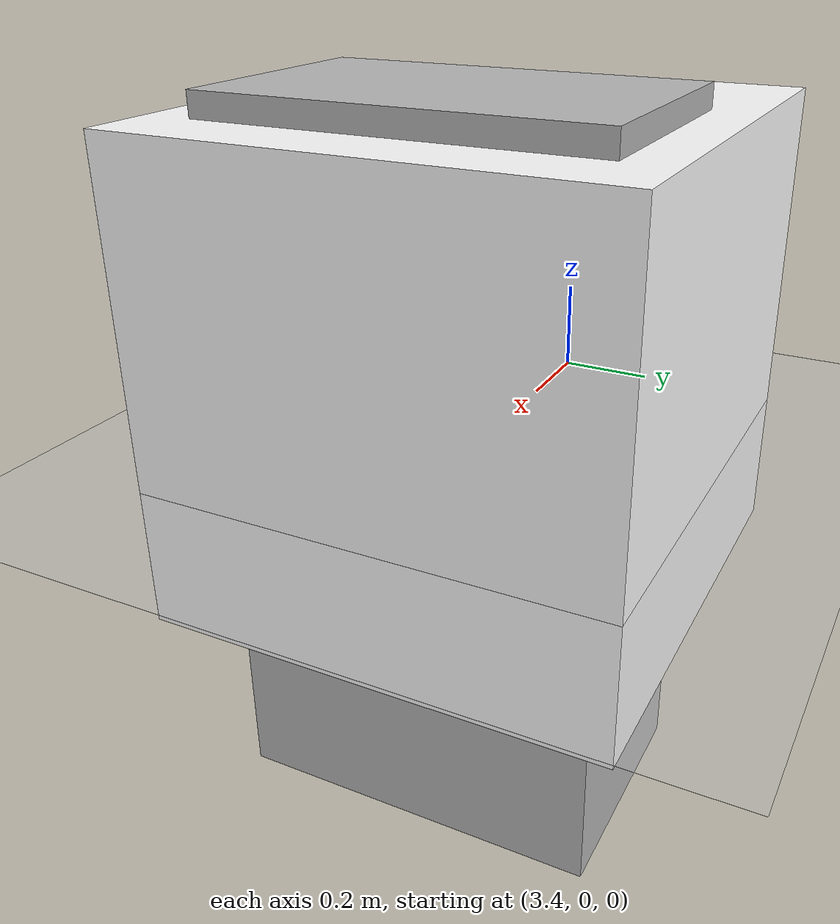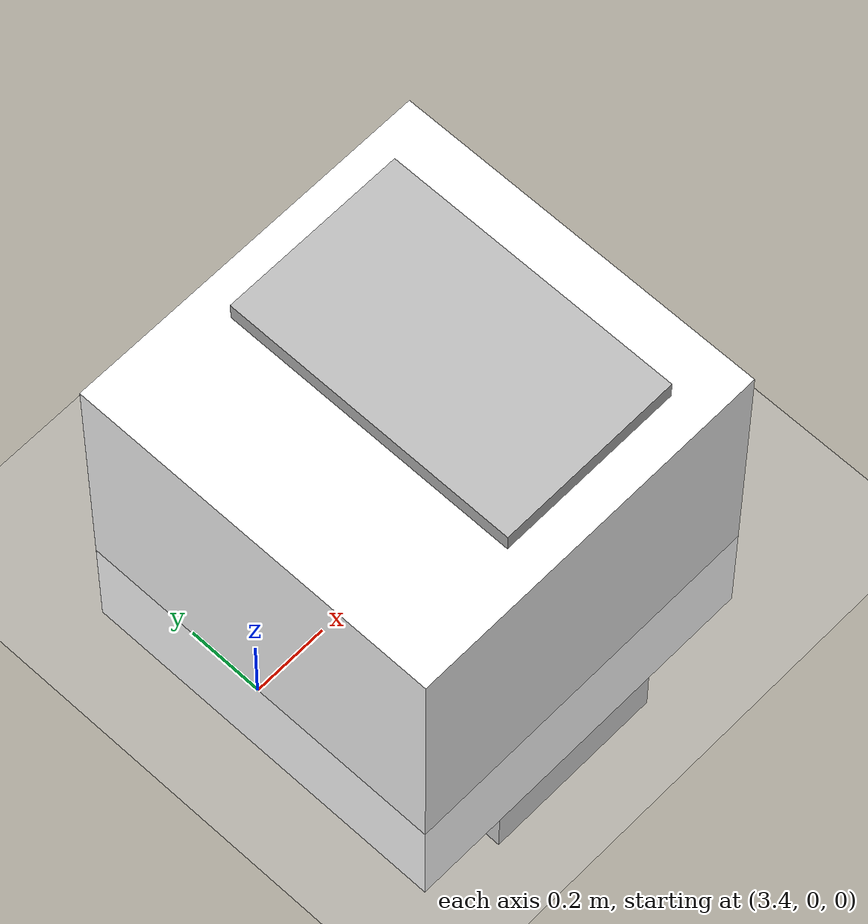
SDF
<?xml version="1.0" ?>
<sdf version="1.5">
  <world name="default">
    <scene>
      <sky>
        <clouds>
          <speed>12</speed>
        </clouds>
      </sky>
    </scene>
    <!-- A global light source -->
    <include>
      <uri>model://sun</uri>
    </include>
    <!-- A ground plane -->
    <include>
      <uri>model://ground_plane</uri>
    </include>

	  <model name="charging_box_1">
	  <pose>4 0 0 0 0 0</pose>
	  <link name="charging_box_link_1">
	    <collision name="collision">
	      <geometry>
		<box>
		  <size>0.5 0.8 1.5</size>
		</box>
	      </geometry>
	      <surface>
		<friction>
		  <ode>
		    <mu>0.01</mu>
		    <mu2>0.01</mu2>
		  </ode>
		</friction>
	      </surface>
	    </collision>
	    <visual name="visual">
	      <geometry>
		<box>
		  <size>0.5 0.8 1.5</size>
		</box>
	      </geometry>
	    </visual>
	  </link>
	  </model>

    <include>
	      <uri>model://aruco_visual_marker_0</uri>
	      <pose> 3.9 0 0.2 0 -1.57 0</pose>
	      <scale>5 5 5</scale>
    </include>

	  <joint name="tag_joint_1" type="fixed">
	    <parent link="charging_box_link_1"/>
	    <child link="aruco_visual_marker_0"/>
	    <axis xyz="0 0 1"/>
	    <origin xyz="0 0 0"/>
	  </joint>

  </world>
</sdf>

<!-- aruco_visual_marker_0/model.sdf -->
<sdf version='1.5'>
  <model name='aruco_visual_marker_0'>

    <link name='marker'>
      <pose frame=''>0 0 0 0 0 0</pose>
      <visual name='visual'>
        <geometry>
          <box>
            <size>1 1 1</size>
          </box>
        </geometry>
        <material>
          <script>
            <uri>model://aruco_visual_marker_0/materials/scripts</uri>
            <uri>model://aruco_visual_marker_0/materials/textures</uri>
            <name>ArucoVisualMarker0/Marker</name>
          </script>
          <ambient>1 1 1 1</ambient>
          <diffuse>1 1 1 1</diffuse>
          <specular>0 0 0 1</specular>
          <emissive>1 1 1 0</emissive>
          <shader type='vertex'>
            <normal_map>__default__</normal_map>
          </shader>
        </material>
        <pose frame=''>0 0 0 0 -0 0</pose>
        <cast_shadows>1</cast_shadows>
        <transparency>0</transparency>
      </visual>
      <collision name='collision'>
        <laser_retro>0</laser_retro>
        <max_contacts>10</max_contacts>
        <pose frame=''>0 0 0 0 -0 0</pose>
        <geometry>
          <box>
            <size>1 1 1</size>
          </box>
        </geometry>
      </collision>
    </link>

    <static>1</static>
    <allow_auto_disable>1</allow_auto_disable>

  </model>
</sdf>
